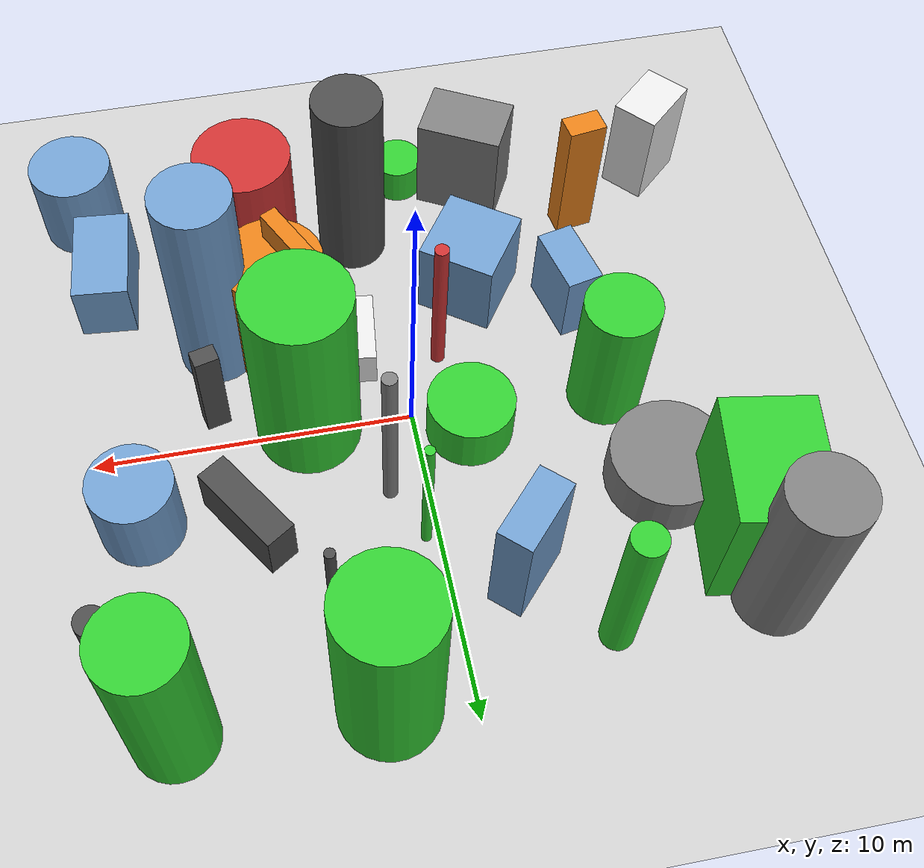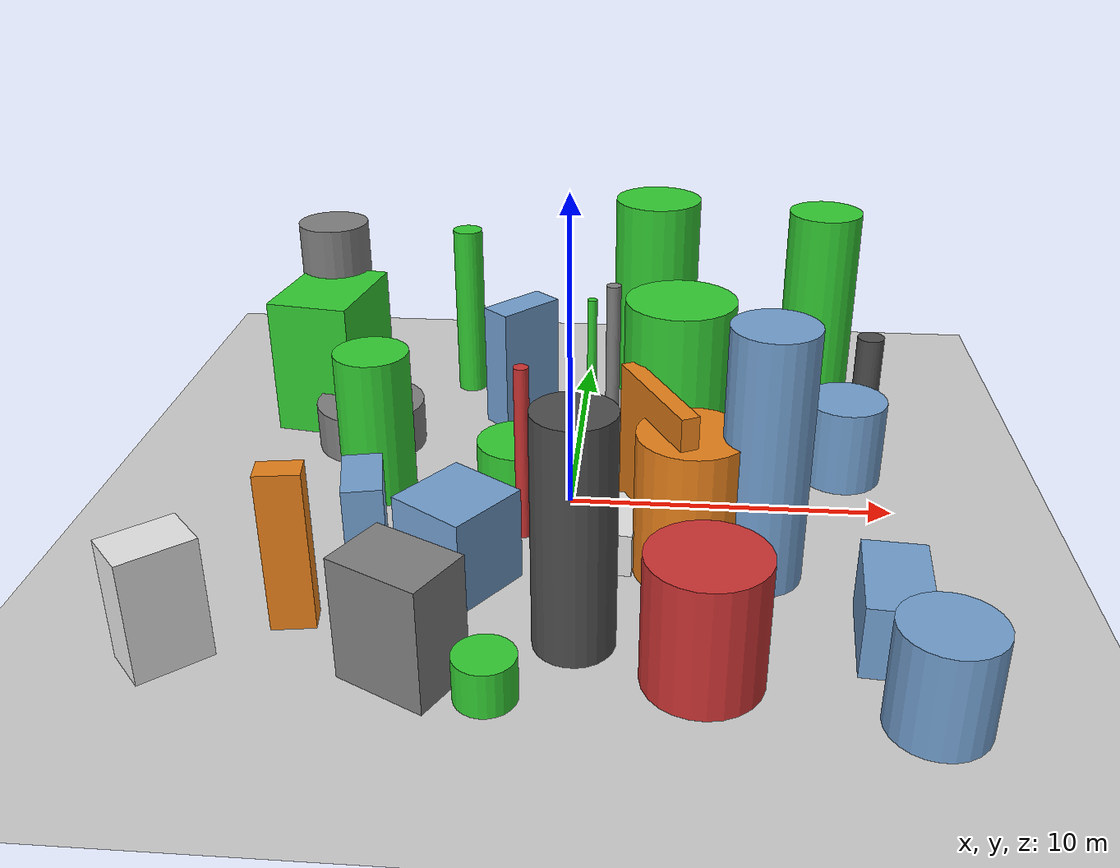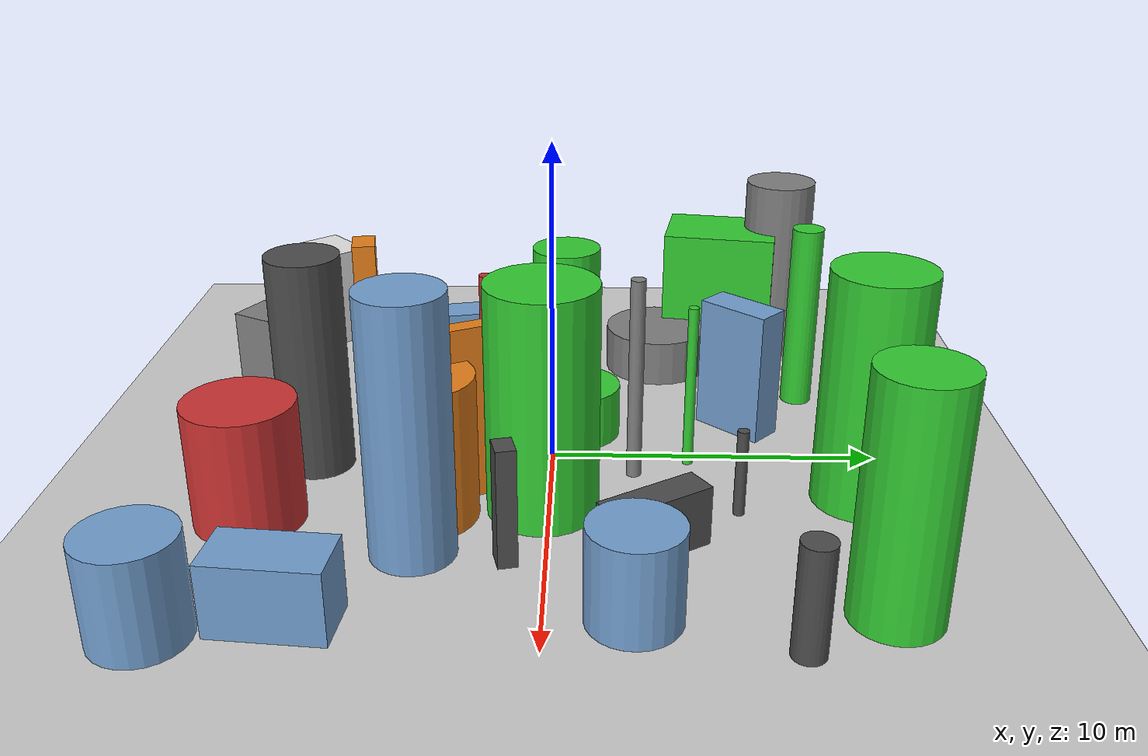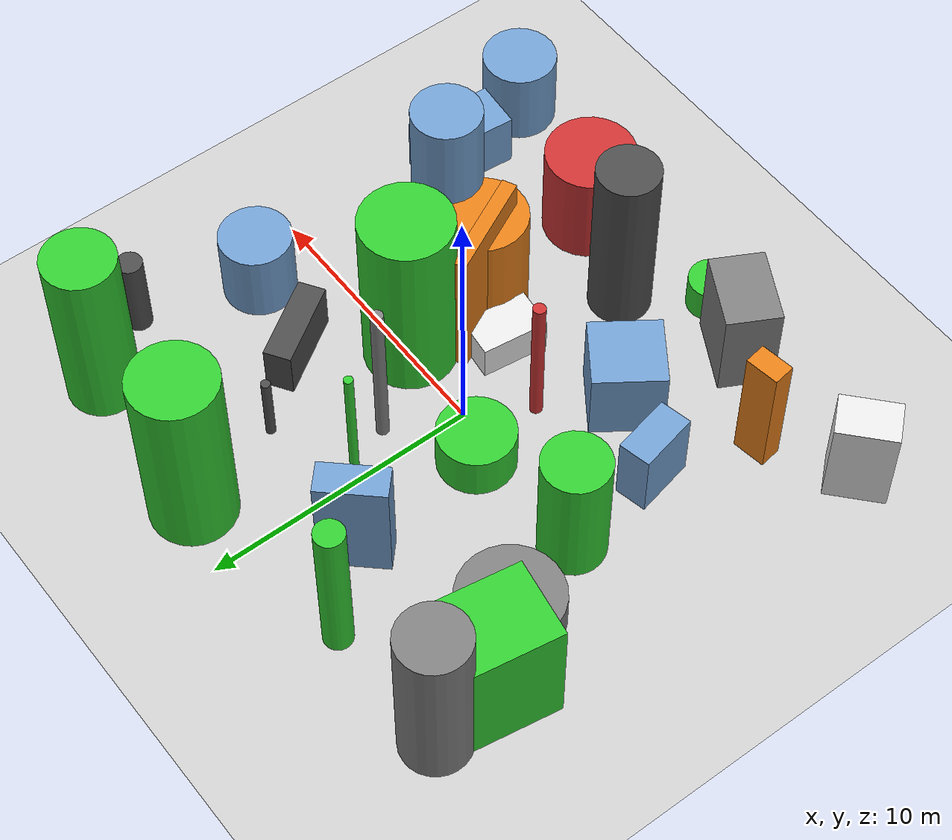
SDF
<?xml version='1.0'?>
<sdf version='1.6'>
  <world name='default'>
    <!-- Sun light -->
    <light name='sun' type='directional'>
      <cast_shadows>1</cast_shadows>
      <pose>0 0 10 0 0 0</pose>
      <diffuse>0.8 0.8 0.8 1</diffuse>
      <specular>0.2 0.2 0.2 1</specular>
      <attenuation>
        <range>1000</range>
        <constant>0.9</constant>
        <linear>0.01</linear>
        <quadratic>0.001</quadratic>
      </attenuation>
      <direction>-0.5 0.1 -0.9</direction>
    </light>

    <!-- Ground plane -->
    <model name='ground_plane'>
      <static>1</static>
      <link name='link'>
        <collision name='collision'>
          <geometry>
            <plane>
              <normal>0 0 1</normal>
              <size>100 100</size>
            </plane>
          </geometry>
          <surface>
            <contact>
              <collide_bitmask>65535</collide_bitmask>
              <ode/>
            </contact>
            <friction>
              <ode>
                <mu>100</mu>
                <mu2>50</mu2>
              </ode>
              <torsional><ode/></torsional>
            </friction>
            <bounce/>
          </surface>
          <max_contacts>10</max_contacts>
        </collision>
        <visual name='visual'>
          <cast_shadows>0</cast_shadows>
          <geometry>
            <plane>
              <normal>0 0 1</normal>
              <size>100 100</size>
            </plane>
          </geometry>
          <material>
            <script>
              <uri>file://media/materials/scripts/gazebo.material</uri>
              <n>Gazebo/Grey</n>
            </script>
          </material>
        </visual>
      </link>
    </model>

    <!-- Environment -->
    <magnetic_field>6e-06 2.3e-05 -4.2e-05</magnetic_field>
    <atmosphere type='adiabatic'/>
    <physics name='default_physics' default='0' type='ode'>
      <gravity>0 0 -9.8</gravity>
      <max_step_size>0.004</max_step_size>
      <real_time_factor>1</real_time_factor>
      <real_time_update_rate>250</real_time_update_rate>
    </physics>
    <scene>
      <ambient>0.4 0.4 0.4 1</ambient>
      <background>0.7 0.7 0.7 1</background>
      <shadows>1</shadows>
    </scene>
    <wind/>
    <spherical_coordinates>
      <surface_model>EARTH_WGS84</surface_model>
      <latitude_deg>0</latitude_deg>
      <longitude_deg>0</longitude_deg>
      <elevation>0</elevation>
      <heading_deg>0</heading_deg>
    </spherical_coordinates>

    <!-- ============ OBSTACLES (32) ============ -->
    <model name='obs_00'>
      <static>1</static>
      <link name='link'>
        <visual name='visual'>
          <geometry>
            <box>
              <size>3.8509 0.5390 5.3738</size>
            </box>
          </geometry>
          <material>
            <script>
              <n>Gazebo/Orange</n>
              <uri>file://media/materials/scripts/gazebo.material</uri>
            </script>
            <ambient>0.9 0.5 0.1 1</ambient>
          </material>
        </visual>
        <collision name='collision'>
          <geometry>
            <box>
              <size>3.8509 0.5390 5.3738</size>
            </box>
          </geometry>
          <max_contacts>10</max_contacts>
          <surface>
            <contact><ode/></contact>
            <bounce/>
            <friction>
              <ode><mu>1</mu><mu2>1</mu2></ode>
              <torsional><ode/></torsional>
            </friction>
          </surface>
        </collision>
      </link>
      <pose>2.6797 -2.8997 2.6869 0 0 2.0356</pose>
    </model>

    <model name='obs_01'>
      <static>1</static>
      <link name='link'>
        <visual name='visual'>
          <geometry>
            <cylinder>
              <radius>0.1593</radius>
              <length>5.1766</length>
            </cylinder>
          </geometry>
          <material>
            <script>
              <n>Gazebo/Green</n>
              <uri>file://media/materials/scripts/gazebo.material</uri>
            </script>
            <ambient>0.2 0.8 0.2 1</ambient>
          </material>
        </visual>
        <collision name='collision'>
          <geometry>
            <cylinder>
              <radius>0.1593</radius>
              <length>5.1766</length>
            </cylinder>
          </geometry>
          <max_contacts>10</max_contacts>
          <surface>
            <contact><ode/></contact>
            <bounce/>
            <friction>
              <ode><mu>1</mu><mu2>1</mu2></ode>
              <torsional><ode/></torsional>
            </friction>
          </surface>
        </collision>
      </link>
      <pose>0.3887 4.1938 2.5883 0 0 0.3872</pose>
    </model>

    <model name='obs_02'>
      <static>1</static>
      <link name='link'>
        <visual name='visual'>
          <geometry>
            <box>
              <size>0.7979 1.2352 4.7072</size>
            </box>
          </geometry>
          <material>
            <script>
              <n>Gazebo/Orange</n>
              <uri>file://media/materials/scripts/gazebo.material</uri>
            </script>
            <ambient>0.9 0.5 0.1 1</ambient>
          </material>
        </visual>
        <collision name='collision'>
          <geometry>
            <box>
              <size>0.7979 1.2352 4.7072</size>
            </box>
          </geometry>
          <max_contacts>10</max_contacts>
          <surface>
            <contact><ode/></contact>
            <bounce/>
            <friction>
              <ode><mu>1</mu><mu2>1</mu2></ode>
              <torsional><ode/></torsional>
            </friction>
          </surface>
        </collision>
      </link>
      <pose>-6.9039 -6.9259 2.3536 0 0 1.7201</pose>
    </model>

    <model name='obs_03'>
      <static>1</static>
      <link name='link'>
        <visual name='visual'>
          <geometry>
            <box>
              <size>1.9443 2.7608 3.5628</size>
            </box>
          </geometry>
          <material>
            <script>
              <n>Gazebo/Grey</n>
              <uri>file://media/materials/scripts/gazebo.material</uri>
            </script>
            <ambient>0.5 0.5 0.5 1</ambient>
          </material>
        </visual>
        <collision name='collision'>
          <geometry>
            <box>
              <size>1.9443 2.7608 3.5628</size>
            </box>
          </geometry>
          <max_contacts>10</max_contacts>
          <surface>
            <contact><ode/></contact>
            <bounce/>
            <friction>
              <ode><mu>1</mu><mu2>1</mu2></ode>
              <torsional><ode/></torsional>
            </friction>
          </surface>
        </collision>
      </link>
      <pose>-3.5474 -8.9829 1.7814 0 0 1.0802</pose>
    </model>

    <model name='obs_04'>
      <static>1</static>
      <link name='link'>
        <visual name='visual'>
          <geometry>
            <cylinder>
              <radius>1.2912</radius>
              <length>2.7692</length>
            </cylinder>
          </geometry>
          <material>
            <script>
              <n>Gazebo/Blue</n>
              <uri>file://media/materials/scripts/gazebo.material</uri>
            </script>
            <ambient>0.447 0.624 0.812 1</ambient>
          </material>
        </visual>
        <collision name='collision'>
          <geometry>
            <cylinder>
              <radius>1.2912</radius>
              <length>2.7692</length>
            </cylinder>
          </geometry>
          <max_contacts>10</max_contacts>
          <surface>
            <contact><ode/></contact>
            <bounce/>
            <friction>
              <ode><mu>1</mu><mu2>1</mu2></ode>
              <torsional><ode/></torsional>
            </friction>
          </surface>
        </collision>
      </link>
      <pose>8.6476 2.3122 1.3846 0 0 0.5780</pose>
    </model>

    <model name='obs_05'>
      <static>1</static>
      <link name='link'>
        <visual name='visual'>
          <geometry>
            <cylinder>
              <radius>1.6294</radius>
              <length>6.9658</length>
            </cylinder>
          </geometry>
          <material>
            <script>
              <n>Gazebo/Green</n>
              <uri>file://media/materials/scripts/gazebo.material</uri>
            </script>
            <ambient>0.2 0.8 0.2 1</ambient>
          </material>
        </visual>
        <collision name='collision'>
          <geometry>
            <cylinder>
              <radius>1.6294</radius>
              <length>6.9658</length>
            </cylinder>
          </geometry>
          <max_contacts>10</max_contacts>
          <surface>
            <contact><ode/></contact>
            <bounce/>
            <friction>
              <ode><mu>1</mu><mu2>1</mu2></ode>
              <torsional><ode/></torsional>
            </friction>
          </surface>
        </collision>
      </link>
      <pose>3.2378 -0.1890 3.4829 0 0 0.5698</pose>
    </model>

    <model name='obs_06'>
      <static>1</static>
      <link name='link'>
        <visual name='visual'>
          <geometry>
            <box>
              <size>2.4238 1.5173 1.3368</size>
            </box>
          </geometry>
          <material>
            <script>
              <n>Gazebo/White</n>
              <uri>file://media/materials/scripts/gazebo.material</uri>
            </script>
            <ambient>0.9 0.9 0.9 1</ambient>
          </material>
        </visual>
        <collision name='collision'>
          <geometry>
            <box>
              <size>2.4238 1.5173 1.3368</size>
            </box>
          </geometry>
          <max_contacts>10</max_contacts>
          <surface>
            <contact><ode/></contact>
            <bounce/>
            <friction>
              <ode><mu>1</mu><mu2>1</mu2></ode>
              <torsional><ode/></torsional>
            </friction>
          </surface>
        </collision>
      </link>
      <pose>1.4535 -2.8383 0.6684 0 0 1.4491</pose>
    </model>

    <model name='obs_07'>
      <static>1</static>
      <link name='link'>
        <visual name='visual'>
          <geometry>
            <cylinder>
              <radius>1.2241</radius>
              <length>7.6608</length>
            </cylinder>
          </geometry>
          <material>
            <script>
              <n>Gazebo/Blue</n>
              <uri>file://media/materials/scripts/gazebo.material</uri>
            </script>
            <ambient>0.447 0.624 0.812 1</ambient>
          </material>
        </visual>
        <collision name='collision'>
          <geometry>
            <cylinder>
              <radius>1.2241</radius>
              <length>7.6608</length>
            </cylinder>
          </geometry>
          <max_contacts>10</max_contacts>
          <surface>
            <contact><ode/></contact>
            <bounce/>
            <friction>
              <ode><mu>1</mu><mu2>1</mu2></ode>
              <torsional><ode/></torsional>
            </friction>
          </surface>
        </collision>
      </link>
      <pose>5.6806 -3.6428 3.8304 0 0 0.6202</pose>
    </model>

    <model name='obs_08'>
      <static>1</static>
      <link name='link'>
        <visual name='visual'>
          <geometry>
            <cylinder>
              <radius>1.3626</radius>
              <length>1.7003</length>
            </cylinder>
          </geometry>
          <material>
            <script>
              <n>Gazebo/Green</n>
              <uri>file://media/materials/scripts/gazebo.material</uri>
            </script>
            <ambient>0.2 0.8 0.2 1</ambient>
          </material>
        </visual>
        <collision name='collision'>
          <geometry>
            <cylinder>
              <radius>1.3626</radius>
              <length>1.7003</length>
            </cylinder>
          </geometry>
          <max_contacts>10</max_contacts>
          <surface>
            <contact><ode/></contact>
            <bounce/>
            <friction>
              <ode><mu>1</mu><mu2>1</mu2></ode>
              <torsional><ode/></torsional>
            </friction>
          </surface>
        </collision>
      </link>
      <pose>-1.6814 0.7407 0.8502 0 0 0.4028</pose>
    </model>

    <model name='obs_09'>
      <static>1</static>
      <link name='link'>
        <visual name='visual'>
          <geometry>
            <box>
              <size>1.1772 2.2005 2.6417</size>
            </box>
          </geometry>
          <material>
            <script>
              <n>Gazebo/Blue</n>
              <uri>file://media/materials/scripts/gazebo.material</uri>
            </script>
            <ambient>0.447 0.624 0.812 1</ambient>
          </material>
        </visual>
        <collision name='collision'>
          <geometry>
            <box>
              <size>1.1772 2.2005 2.6417</size>
            </box>
          </geometry>
          <max_contacts>10</max_contacts>
          <surface>
            <contact><ode/></contact>
            <bounce/>
            <friction>
              <ode><mu>1</mu><mu2>1</mu2></ode>
              <torsional><ode/></torsional>
            </friction>
          </surface>
        </collision>
      </link>
      <pose>-5.7329 -3.3623 1.3209 0 0 0.2193</pose>
    </model>

    <model name='obs_10'>
      <static>1</static>
      <link name='link'>
        <visual name='visual'>
          <geometry>
            <box>
              <size>2.5446 2.4794 2.8225</size>
            </box>
          </geometry>
          <material>
            <script>
              <n>Gazebo/Blue</n>
              <uri>file://media/materials/scripts/gazebo.material</uri>
            </script>
            <ambient>0.447 0.624 0.812 1</ambient>
          </material>
        </visual>
        <collision name='collision'>
          <geometry>
            <box>
              <size>2.5446 2.4794 2.8225</size>
            </box>
          </geometry>
          <max_contacts>10</max_contacts>
          <surface>
            <contact><ode/></contact>
            <bounce/>
            <friction>
              <ode><mu>1</mu><mu2>1</mu2></ode>
              <torsional><ode/></torsional>
            </friction>
          </surface>
        </collision>
      </link>
      <pose>-2.7840 -4.6311 1.4112 0 0 0.9603</pose>
    </model>

    <model name='obs_11'>
      <static>1</static>
      <link name='link'>
        <visual name='visual'>
          <geometry>
            <cylinder>
              <radius>0.4620</radius>
              <length>3.1925</length>
            </cylinder>
          </geometry>
          <material>
            <script>
              <n>Gazebo/DarkGrey</n>
              <uri>file://media/materials/scripts/gazebo.material</uri>
            </script>
            <ambient>0.3 0.3 0.3 1</ambient>
          </material>
        </visual>
        <collision name='collision'>
          <geometry>
            <cylinder>
              <radius>0.4620</radius>
              <length>3.1925</length>
            </cylinder>
          </geometry>
          <max_contacts>10</max_contacts>
          <surface>
            <contact><ode/></contact>
            <bounce/>
            <friction>
              <ode><mu>1</mu><mu2>1</mu2></ode>
              <torsional><ode/></torsional>
            </friction>
          </surface>
        </collision>
      </link>
      <pose>9.9326 6.4738 1.5963 0 0 3.0117</pose>
    </model>

    <model name='obs_12'>
      <static>1</static>
      <link name='link'>
        <visual name='visual'>
          <geometry>
            <cylinder>
              <radius>1.3356</radius>
              <length>2.9368</length>
            </cylinder>
          </geometry>
          <material>
            <script>
              <n>Gazebo/Blue</n>
              <uri>file://media/materials/scripts/gazebo.material</uri>
            </script>
            <ambient>0.447 0.624 0.812 1</ambient>
          </material>
        </visual>
        <collision name='collision'>
          <geometry>
            <cylinder>
              <radius>1.3356</radius>
              <length>2.9368</length>
            </cylinder>
          </geometry>
          <max_contacts>10</max_contacts>
          <surface>
            <contact><ode/></contact>
            <bounce/>
            <friction>
              <ode><mu>1</mu><mu2>1</mu2></ode>
              <torsional><ode/></torsional>
            </friction>
          </surface>
        </collision>
      </link>
      <pose>9.6227 -9.8239 1.4684 0 0 2.2374</pose>
    </model>

    <model name='obs_13'>
      <static>1</static>
      <link name='link'>
        <visual name='visual'>
          <geometry>
            <cylinder>
              <radius>1.5060</radius>
              <length>7.1452</length>
            </cylinder>
          </geometry>
          <material>
            <script>
              <n>Gazebo/Green</n>
              <uri>file://media/materials/scripts/gazebo.material</uri>
            </script>
            <ambient>0.2 0.8 0.2 1</ambient>
          </material>
        </visual>
        <collision name='collision'>
          <geometry>
            <cylinder>
              <radius>1.5060</radius>
              <length>7.1452</length>
            </cylinder>
          </geometry>
          <max_contacts>10</max_contacts>
          <surface>
            <contact><ode/></contact>
            <bounce/>
            <friction>
              <ode><mu>1</mu><mu2>1</mu2></ode>
              <torsional><ode/></torsional>
            </friction>
          </surface>
        </collision>
      </link>
      <pose>2.4226 9.1779 3.5726 0 0 0.4219</pose>
    </model>

    <model name='obs_14'>
      <static>1</static>
      <link name='link'>
        <visual name='visual'>
          <geometry>
            <cylinder>
              <radius>1.5833</radius>
              <length>4.4088</length>
            </cylinder>
          </geometry>
          <material>
            <script>
              <n>Gazebo/Orange</n>
              <uri>file://media/materials/scripts/gazebo.material</uri>
            </script>
            <ambient>0.9 0.5 0.1 1</ambient>
          </material>
        </visual>
        <collision name='collision'>
          <geometry>
            <cylinder>
              <radius>1.5833</radius>
              <length>4.4088</length>
            </cylinder>
          </geometry>
          <max_contacts>10</max_contacts>
          <surface>
            <contact><ode/></contact>
            <bounce/>
            <friction>
              <ode><mu>1</mu><mu2>1</mu2></ode>
              <torsional><ode/></torsional>
            </friction>
          </surface>
        </collision>
      </link>
      <pose>3.6510 -3.5813 2.2044 0 0 1.3991</pose>
    </model>

    <model name='obs_15'>
      <static>1</static>
      <link name='link'>
        <visual name='visual'>
          <geometry>
            <cylinder>
              <radius>1.2723</radius>
              <length>6.8926</length>
            </cylinder>
          </geometry>
          <material>
            <script>
              <n>Gazebo/Green</n>
              <uri>file://media/materials/scripts/gazebo.material</uri>
            </script>
            <ambient>0.2 0.8 0.2 1</ambient>
          </material>
        </visual>
        <collision name='collision'>
          <geometry>
            <cylinder>
              <radius>1.2723</radius>
              <length>6.8926</length>
            </cylinder>
          </geometry>
          <max_contacts>10</max_contacts>
          <surface>
            <contact><ode/></contact>
            <bounce/>
            <friction>
              <ode><mu>1</mu><mu2>1</mu2></ode>
              <torsional><ode/></torsional>
            </friction>
          </surface>
        </collision>
      </link>
      <pose>8.3186 8.8998 3.4463 0 0 0.5522</pose>
    </model>

    <model name='obs_16'>
      <static>1</static>
      <link name='link'>
        <visual name='visual'>
          <geometry>
            <cylinder>
              <radius>0.5134</radius>
              <length>6.1348</length>
            </cylinder>
          </geometry>
          <material>
            <script>
              <n>Gazebo/Green</n>
              <uri>file://media/materials/scripts/gazebo.material</uri>
            </script>
            <ambient>0.2 0.8 0.2 1</ambient>
          </material>
        </visual>
        <collision name='collision'>
          <geometry>
            <cylinder>
              <radius>0.5134</radius>
              <length>6.1348</length>
            </cylinder>
          </geometry>
          <max_contacts>10</max_contacts>
          <surface>
            <contact><ode/></contact>
            <bounce/>
            <friction>
              <ode><mu>1</mu><mu2>1</mu2></ode>
              <torsional><ode/></torsional>
            </friction>
          </surface>
        </collision>
      </link>
      <pose>-4.3434 8.2267 3.0674 0 0 2.8001</pose>
    </model>

    <model name='obs_17'>
      <static>1</static>
      <link name='link'>
        <visual name='visual'>
          <geometry>
            <box>
              <size>0.7639 0.5652 3.5359</size>
            </box>
          </geometry>
          <material>
            <script>
              <n>Gazebo/DarkGrey</n>
              <uri>file://media/materials/scripts/gazebo.material</uri>
            </script>
            <ambient>0.3 0.3 0.3 1</ambient>
          </material>
        </visual>
        <collision name='collision'>
          <geometry>
            <box>
              <size>0.7639 0.5652 3.5359</size>
            </box>
          </geometry>
          <max_contacts>10</max_contacts>
          <surface>
            <contact><ode/></contact>
            <bounce/>
            <friction>
              <ode><mu>1</mu><mu2>1</mu2></ode>
              <torsional><ode/></torsional>
            </friction>
          </surface>
        </collision>
      </link>
      <pose>6.0563 -1.0889 1.7679 0 0 0.2402</pose>
    </model>

    <model name='obs_18'>
      <static>1</static>
      <link name='link'>
        <visual name='visual'>
          <geometry>
            <cylinder>
              <radius>1.2210</radius>
              <length>6.3844</length>
            </cylinder>
          </geometry>
          <material>
            <script>
              <n>Gazebo/Grey</n>
              <uri>file://media/materials/scripts/gazebo.material</uri>
            </script>
            <ambient>0.5 0.5 0.5 1</ambient>
          </material>
        </visual>
        <collision name='collision'>
          <geometry>
            <cylinder>
              <radius>1.2210</radius>
              <length>6.3844</length>
            </cylinder>
          </geometry>
          <max_contacts>10</max_contacts>
          <surface>
            <contact><ode/></contact>
            <bounce/>
            <friction>
              <ode><mu>1</mu><mu2>1</mu2></ode>
              <torsional><ode/></torsional>
            </friction>
          </surface>
        </collision>
      </link>
      <pose>-9.1230 7.9656 3.1922 0 0 2.5530</pose>
    </model>

    <model name='obs_19'>
      <static>1</static>
      <link name='link'>
        <visual name='visual'>
          <geometry>
            <cylinder>
              <radius>1.1704</radius>
              <length>4.8043</length>
            </cylinder>
          </geometry>
          <material>
            <script>
              <n>Gazebo/Green</n>
              <uri>file://media/materials/scripts/gazebo.material</uri>
            </script>
            <ambient>0.2 0.8 0.2 1</ambient>
          </material>
        </visual>
        <collision name='collision'>
          <geometry>
            <cylinder>
              <radius>1.1704</radius>
              <length>4.8043</length>
            </cylinder>
          </geometry>
          <max_contacts>10</max_contacts>
          <surface>
            <contact><ode/></contact>
            <bounce/>
            <friction>
              <ode><mu>1</mu><mu2>1</mu2></ode>
              <torsional><ode/></torsional>
            </friction>
          </surface>
        </collision>
      </link>
      <pose>-6.1498 0.2779 2.4021 0 0 2.8472</pose>
    </model>

    <model name='obs_20'>
      <static>1</static>
      <link name='link'>
        <visual name='visual'>
          <geometry>
            <box>
              <size>3.2132 1.7804 2.1165</size>
            </box>
          </geometry>
          <material>
            <script>
              <n>Gazebo/Blue</n>
              <uri>file://media/materials/scripts/gazebo.material</uri>
            </script>
            <ambient>0.447 0.624 0.812 1</ambient>
          </material>
        </visual>
        <collision name='collision'>
          <geometry>
            <box>
              <size>3.2132 1.7804 2.1165</size>
            </box>
          </geometry>
          <max_contacts>10</max_contacts>
          <surface>
            <contact><ode/></contact>
            <bounce/>
            <friction>
              <ode><mu>1</mu><mu2>1</mu2></ode>
              <torsional><ode/></torsional>
            </friction>
          </surface>
        </collision>
      </link>
      <pose>8.9642 -6.6521 1.0583 0 0 1.4832</pose>
    </model>

    <model name='obs_21'>
      <static>1</static>
      <link name='link'>
        <visual name='visual'>
          <geometry>
            <box>
              <size>1.5185 2.1265 3.5521</size>
            </box>
          </geometry>
          <material>
            <script>
              <n>Gazebo/White</n>
              <uri>file://media/materials/scripts/gazebo.material</uri>
            </script>
            <ambient>0.9 0.9 0.9 1</ambient>
          </material>
        </visual>
        <collision name='collision'>
          <geometry>
            <box>
              <size>1.5185 2.1265 3.5521</size>
            </box>
          </geometry>
          <max_contacts>10</max_contacts>
          <surface>
            <contact><ode/></contact>
            <bounce/>
            <friction>
              <ode><mu>1</mu><mu2>1</mu2></ode>
              <torsional><ode/></torsional>
            </friction>
          </surface>
        </collision>
      </link>
      <pose>-9.8534 -8.6906 1.7760 0 0 2.3035</pose>
    </model>

    <model name='obs_22'>
      <static>1</static>
      <link name='link'>
        <visual name='visual'>
          <geometry>
            <cylinder>
              <radius>0.1696</radius>
              <length>2.6722</length>
            </cylinder>
          </geometry>
          <material>
            <script>
              <n>Gazebo/DarkGrey</n>
              <uri>file://media/materials/scripts/gazebo.material</uri>
            </script>
            <ambient>0.3 0.3 0.3 1</ambient>
          </material>
        </visual>
        <collision name='collision'>
          <geometry>
            <cylinder>
              <radius>0.1696</radius>
              <length>2.6722</length>
            </cylinder>
          </geometry>
          <max_contacts>10</max_contacts>
          <surface>
            <contact><ode/></contact>
            <bounce/>
            <friction>
              <ode><mu>1</mu><mu2>1</mu2></ode>
              <torsional><ode/></torsional>
            </friction>
          </surface>
        </collision>
      </link>
      <pose>3.4067 5.4716 1.3361 0 0 1.1431</pose>
    </model>

    <model name='obs_23'>
      <static>1</static>
      <link name='link'>
        <visual name='visual'>
          <geometry>
            <box>
              <size>3.1502 0.9913 1.7961</size>
            </box>
          </geometry>
          <material>
            <script>
              <n>Gazebo/DarkGrey</n>
              <uri>file://media/materials/scripts/gazebo.material</uri>
            </script>
            <ambient>0.3 0.3 0.3 1</ambient>
          </material>
        </visual>
        <collision name='collision'>
          <geometry>
            <box>
              <size>3.1502 0.9913 1.7961</size>
            </box>
          </geometry>
          <max_contacts>10</max_contacts>
          <surface>
            <contact><ode/></contact>
            <bounce/>
            <friction>
              <ode><mu>1</mu><mu2>1</mu2></ode>
              <torsional><ode/></torsional>
            </friction>
          </surface>
        </collision>
      </link>
      <pose>5.5041 2.9312 0.8981 0 0 2.1494</pose>
    </model>

    <model name='obs_24'>
      <static>1</static>
      <link name='link'>
        <visual name='visual'>
          <geometry>
            <box>
              <size>2.8079 3.8871 4.6796</size>
            </box>
          </geometry>
          <material>
            <script>
              <n>Gazebo/Green</n>
              <uri>file://media/materials/scripts/gazebo.material</uri>
            </script>
            <ambient>0.2 0.8 0.2 1</ambient>
          </material>
        </visual>
        <collision name='collision'>
          <geometry>
            <box>
              <size>2.8079 3.8871 4.6796</size>
            </box>
          </geometry>
          <max_contacts>10</max_contacts>
          <surface>
            <contact><ode/></contact>
            <bounce/>
            <friction>
              <ode><mu>1</mu><mu2>1</mu2></ode>
              <torsional><ode/></torsional>
            </friction>
          </surface>
        </collision>
      </link>
      <pose>-8.9146 5.8843 2.3398 0 0 2.9805</pose>
    </model>

    <model name='obs_25'>
      <static>1</static>
      <link name='link'>
        <visual name='visual'>
          <geometry>
            <cylinder>
              <radius>0.2248</radius>
              <length>6.3303</length>
            </cylinder>
          </geometry>
          <material>
            <script>
              <n>Gazebo/Grey</n>
              <uri>file://media/materials/scripts/gazebo.material</uri>
            </script>
            <ambient>0.5 0.5 0.5 1</ambient>
          </material>
        </visual>
        <collision name='collision'>
          <geometry>
            <cylinder>
              <radius>0.2248</radius>
              <length>6.3303</length>
            </cylinder>
          </geometry>
          <max_contacts>10</max_contacts>
          <surface>
            <contact><ode/></contact>
            <bounce/>
            <friction>
              <ode><mu>1</mu><mu2>1</mu2></ode>
              <torsional><ode/></torsional>
            </friction>
          </surface>
        </collision>
      </link>
      <pose>1.1617 2.4992 3.1652 0 0 2.9505</pose>
    </model>

    <model name='obs_26'>
      <static>1</static>
      <link name='link'>
        <visual name='visual'>
          <geometry>
            <cylinder>
              <radius>0.8335</radius>
              <length>1.2997</length>
            </cylinder>
          </geometry>
          <material>
            <script>
              <n>Gazebo/Green</n>
              <uri>file://media/materials/scripts/gazebo.material</uri>
            </script>
            <ambient>0.2 0.8 0.2 1</ambient>
          </material>
        </visual>
        <collision name='collision'>
          <geometry>
            <cylinder>
              <radius>0.8335</radius>
              <length>1.2997</length>
            </cylinder>
          </geometry>
          <max_contacts>10</max_contacts>
          <surface>
            <contact><ode/></contact>
            <bounce/>
            <friction>
              <ode><mu>1</mu><mu2>1</mu2></ode>
              <torsional><ode/></torsional>
            </friction>
          </surface>
        </collision>
      </link>
      <pose>-1.3395 -9.6622 0.6498 0 0 0.1975</pose>
    </model>

    <model name='obs_27'>
      <static>1</static>
      <link name='link'>
        <visual name='visual'>
          <geometry>
            <cylinder>
              <radius>1.6142</radius>
              <length>3.7167</length>
            </cylinder>
          </geometry>
          <material>
            <script>
              <n>Gazebo/Red</n>
              <uri>file://media/materials/scripts/gazebo.material</uri>
            </script>
            <ambient>0.8 0.2 0.2 1</ambient>
          </material>
        </visual>
        <collision name='collision'>
          <geometry>
            <cylinder>
              <radius>1.6142</radius>
              <length>3.7167</length>
            </cylinder>
          </geometry>
          <max_contacts>10</max_contacts>
          <surface>
            <contact><ode/></contact>
            <bounce/>
            <friction>
              <ode><mu>1</mu><mu2>1</mu2></ode>
              <torsional><ode/></torsional>
            </friction>
          </surface>
        </collision>
      </link>
      <pose>4.0176 -8.5482 1.8583 0 0 1.6270</pose>
    </model>

    <model name='obs_28'>
      <static>1</static>
      <link name='link'>
        <visual name='visual'>
          <geometry>
            <cylinder>
              <radius>0.2238</radius>
              <length>5.5397</length>
            </cylinder>
          </geometry>
          <material>
            <script>
              <n>Gazebo/Red</n>
              <uri>file://media/materials/scripts/gazebo.material</uri>
            </script>
            <ambient>0.8 0.2 0.2 1</ambient>
          </material>
        </visual>
        <collision name='collision'>
          <geometry>
            <cylinder>
              <radius>0.2238</radius>
              <length>5.5397</length>
            </cylinder>
          </geometry>
          <max_contacts>10</max_contacts>
          <surface>
            <contact><ode/></contact>
            <bounce/>
            <friction>
              <ode><mu>1</mu><mu2>1</mu2></ode>
              <torsional><ode/></torsional>
            </friction>
          </surface>
        </collision>
      </link>
      <pose>-1.2465 -2.0977 2.7698 0 0 2.7695</pose>
    </model>

    <model name='obs_29'>
      <static>1</static>
      <link name='link'>
        <visual name='visual'>
          <geometry>
            <cylinder>
              <radius>1.1145</radius>
              <length>6.8075</length>
            </cylinder>
          </geometry>
          <material>
            <script>
              <n>Gazebo/DarkGrey</n>
              <uri>file://media/materials/scripts/gazebo.material</uri>
            </script>
            <ambient>0.3 0.3 0.3 1</ambient>
          </material>
        </visual>
        <collision name='collision'>
          <geometry>
            <cylinder>
              <radius>1.1145</radius>
              <length>6.8075</length>
            </cylinder>
          </geometry>
          <max_contacts>10</max_contacts>
          <surface>
            <contact><ode/></contact>
            <bounce/>
            <friction>
              <ode><mu>1</mu><mu2>1</mu2></ode>
              <torsional><ode/></torsional>
            </friction>
          </surface>
        </collision>
      </link>
      <pose>0.6694 -7.2724 3.4038 0 0 2.2109</pose>
    </model>

    <model name='obs_30'>
      <static>1</static>
      <link name='link'>
        <visual name='visual'>
          <geometry>
            <box>
              <size>2.4052 1.1085 4.2684</size>
            </box>
          </geometry>
          <material>
            <script>
              <n>Gazebo/Blue</n>
              <uri>file://media/materials/scripts/gazebo.material</uri>
            </script>
            <ambient>0.447 0.624 0.812 1</ambient>
          </material>
        </visual>
        <collision name='collision'>
          <geometry>
            <box>
              <size>2.4052 1.1085 4.2684</size>
            </box>
          </geometry>
          <max_contacts>10</max_contacts>
          <surface>
            <contact><ode/></contact>
            <bounce/>
            <friction>
              <ode><mu>1</mu><mu2>1</mu2></ode>
              <torsional><ode/></torsional>
            </friction>
          </surface>
        </collision>
      </link>
      <pose>-2.1801 5.9497 2.1342 0 0 0.8272</pose>
    </model>

    <model name='obs_31'>
      <static>1</static>
      <link name='link'>
        <visual name='visual'>
          <geometry>
            <cylinder>
              <radius>1.8117</radius>
              <length>1.5449</length>
            </cylinder>
          </geometry>
          <material>
            <script>
              <n>Gazebo/Grey</n>
              <uri>file://media/materials/scripts/gazebo.material</uri>
            </script>
            <ambient>0.5 0.5 0.5 1</ambient>
          </material>
        </visual>
        <collision name='collision'>
          <geometry>
            <cylinder>
              <radius>1.8117</radius>
              <length>1.5449</length>
            </cylinder>
          </geometry>
          <max_contacts>10</max_contacts>
          <surface>
            <contact><ode/></contact>
            <bounce/>
            <friction>
              <ode><mu>1</mu><mu2>1</mu2></ode>
              <torsional><ode/></torsional>
            </friction>
          </surface>
        </collision>
      </link>
      <pose>-7.1185 3.5458 0.7724 0 0 1.8462</pose>
    </model>

    <!-- GUI camera -->
    <gui fullscreen='0'>
      <camera name='user_camera'>
        <pose>-15 0 18 0 0.85 0.15</pose>
        <view_controller>orbit</view_controller>
        <projection_type>perspective</projection_type>
      </camera>
    </gui>
  </world>
</sdf>
